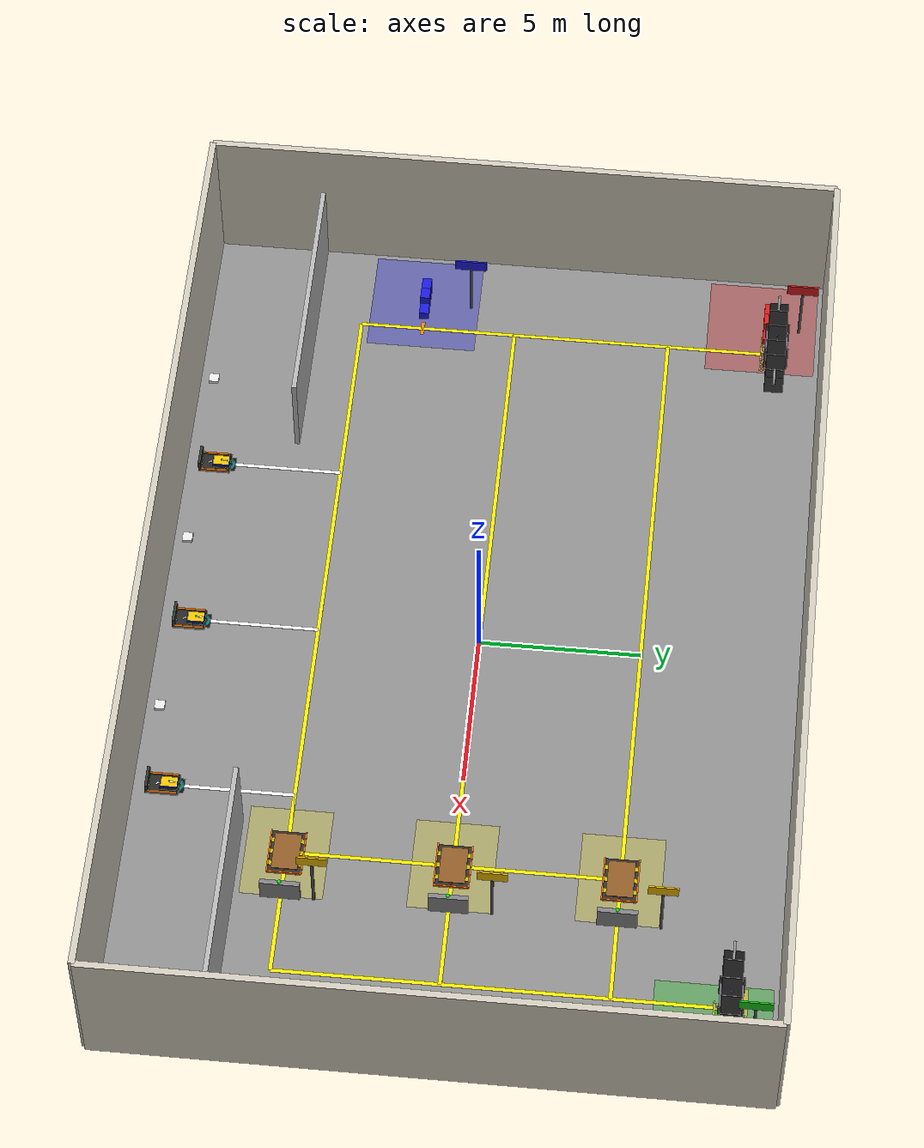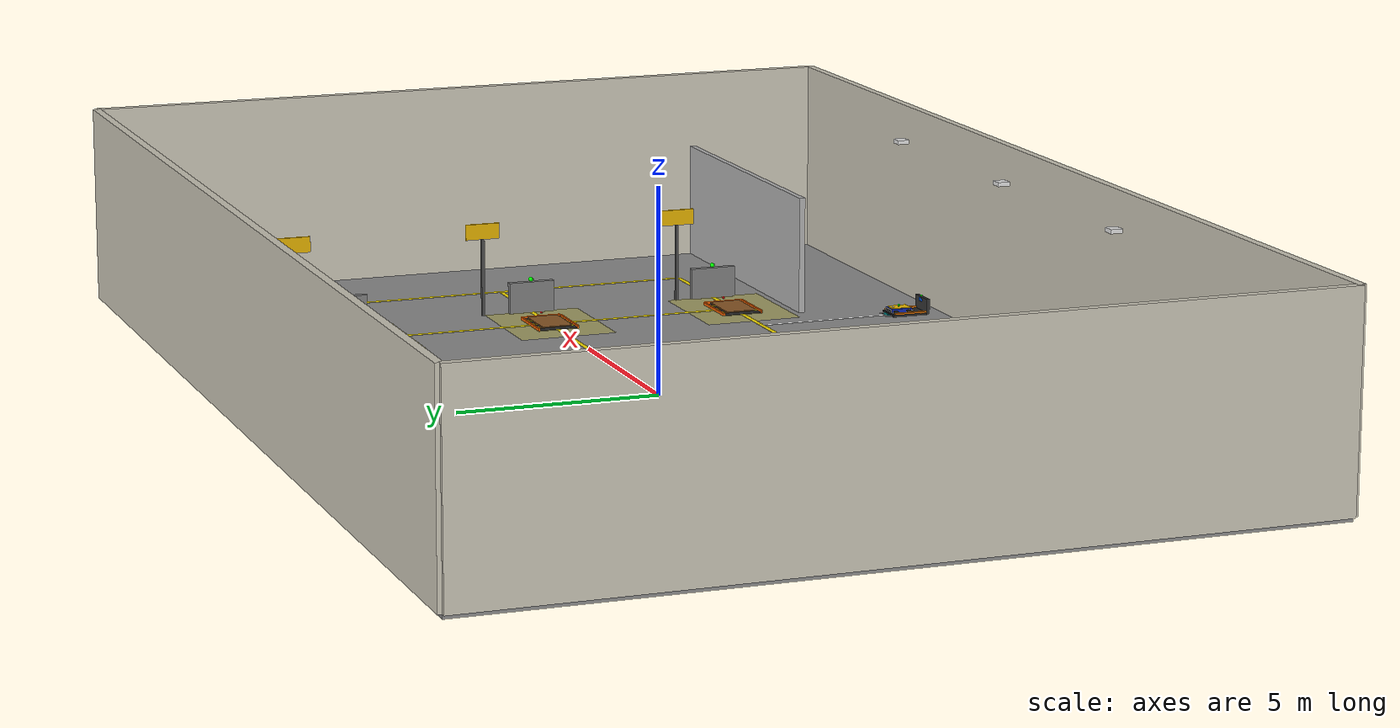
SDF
<sdf version="1.7">
 <world name="agv_factory">
  <model name="factory_floor">
   <static>true</static>
   <pose>0 0 -0.05 0 0 0</pose>
   <link name="link">
    <collision name="col"><geometry><box><size>30 20 0.1</size></box></geometry></collision>
    <visual name="vis">
     <geometry><box><size>30 20 0.1</size></box></geometry>
     <material><ambient>0.55 0.55 0.55 1</ambient><diffuse>0.55 0.55 0.55 1</diffuse></material>
    </visual>
   </link>
  </model>
  <model name="wall_north">
   <static>true</static>
   <pose>0 10 2.5 0 0 0</pose>
   <link name="link">
    <collision name="col"><geometry><box><size>30 0.2 5</size></box></geometry></collision>
    <visual name="vis">
     <geometry><box><size>30 0.2 5</size></box></geometry>
     <material><ambient>0.8 0.78 0.72 1</ambient></material>
    </visual>
   </link>
  </model>
  <model name="wall_south">
   <static>true</static>
   <pose>0 -10 2.5 0 0 0</pose>
   <link name="link">
    <collision name="col"><geometry><box><size>30 0.2 5</size></box></geometry></collision>
    <visual name="vis">
     <geometry><box><size>30 0.2 5</size></box></geometry>
     <material><ambient>0.8 0.78 0.72 1</ambient></material>
    </visual>
   </link>
  </model>
  <model name="wall_east">
   <static>true</static>
   <pose>15 0 2.5 0 0 0</pose>
   <link name="link">
    <collision name="col"><geometry><box><size>0.2 20 5</size></box></geometry></collision>
    <visual name="vis">
     <geometry><box><size>0.2 20 5</size></box></geometry>
     <material><ambient>0.8 0.78 0.72 1</ambient></material>
    </visual>
   </link>
  </model>
  <model name="wall_west">
   <static>true</static>
   <pose>-15 0 2.5 0 0 0</pose>
   <link name="link">
    <collision name="col"><geometry><box><size>0.2 20 5</size></box></geometry></collision>
    <visual name="vis">
     <geometry><box><size>0.2 20 5</size></box></geometry>
     <material><ambient>0.8 0.78 0.72 1</ambient></material>
    </visual>
   </link>
  </model>
  <model name="wall_div_w">
   <static>true</static>
   <pose>-11 -6.5 1.5 0 0 0</pose>
   <link name="link">
    <collision name="col"><geometry><box><size>8 0.15 3</size></box></geometry></collision>
    <visual name="vis">
     <geometry><box><size>8 0.15 3</size></box></geometry>
     <material><ambient>0.7 0.7 0.7 1</ambient></material>
    </visual>
   </link>
  </model>
  <model name="wall_div_e">
   <static>true</static>
   <pose>11 -6.5 1.5 0 0 0</pose>
   <link name="link">
    <collision name="col"><geometry><box><size>8 0.15 3</size></box></geometry></collision>
    <visual name="vis">
     <geometry><box><size>8 0.15 3</size></box></geometry>
     <material><ambient>0.7 0.7 0.7 1</ambient></material>
    </visual>
   </link>
  </model>
  <model name="dock_line_1">
   <static>true</static>
   <pose>-6 -6.9 0.003 0 0 0</pose>
   <link name="l">
    <visual name="v">
     <geometry><box><size>0.12 3.8 0.004</size></box></geometry>
     <material><ambient>1 1 1 1</ambient><diffuse>1 1 1 1</diffuse><emissive>0.8 0.8 0.8 1</emissive></material>
    </visual>
   </link>
  </model>
  <model name="dock_line_2">
   <static>true</static>
   <pose>0 -6.9 0.003 0 0 0</pose>
   <link name="l">
    <visual name="v">
     <geometry><box><size>0.12 3.8 0.004</size></box></geometry>
     <material><ambient>1 1 1 1</ambient><diffuse>1 1 1 1</diffuse><emissive>0.8 0.8 0.8 1</emissive></material>
    </visual>
   </link>
  </model>
  <model name="dock_line_3">
   <static>true</static>
   <pose>6 -6.9 0.003 0 0 0</pose>
   <link name="l">
    <visual name="v">
     <geometry><box><size>0.12 3.8 0.004</size></box></geometry>
     <material><ambient>1 1 1 1</ambient><diffuse>1 1 1 1</diffuse><emissive>0.8 0.8 0.8 1</emissive></material>
    </visual>
   </link>
  </model>
  <model name="line_south">
   <static>true</static>
   <pose>0 -5 0.003 0 0 0</pose>
   <link name="l">
    <visual name="v">
     <geometry><box><size>24 0.12 0.004</size></box></geometry>
     <material>
      <ambient>1.0 0.9 0.0 1</ambient>
      <diffuse>1.0 0.9 0.0 1</diffuse>
      <emissive>0.6 0.55 0.0 1</emissive>
     </material>
    </visual>
   </link>
  </model>
  <model name="line_spine_w">
   <static>true</static>
   <pose>-12 0 0.003 0 0 0</pose>
   <link name="l">
    <visual name="v">
     <geometry><box><size>0.12 10 0.004</size></box></geometry>
     <material>
      <ambient>1.0 0.9 0.0 1</ambient>
      <diffuse>1.0 0.9 0.0 1</diffuse>
      <emissive>0.6 0.55 0.0 1</emissive>
     </material>
    </visual>
   </link>
  </model>
  <model name="line_depot_c_mark">
   <static>true</static>
   <pose>-12 -3 0.003 0 0 0</pose>
   <link name="l">
    <visual name="v">
     <geometry><box><size>0.5 0.12 0.004</size></box></geometry>
     <material>
      <ambient>1.0 0.5 0.0 1</ambient>
      <diffuse>1.0 0.5 0.0 1</diffuse>
      <emissive>0.6 0.3 0.0 1</emissive>
     </material>
    </visual>
   </link>
  </model>
  <model name="line_spine_e">
   <static>true</static>
   <pose>12 0 0.003 0 0 0</pose>
   <link name="l">
    <visual name="v">
     <geometry><box><size>0.12 10 0.004</size></box></geometry>
     <material>
      <ambient>1.0 0.9 0.0 1</ambient>
      <diffuse>1.0 0.9 0.0 1</diffuse>
      <emissive>0.6 0.55 0.0 1</emissive>
     </material>
    </visual>
   </link>
  </model>
  <model name="line_north">
   <static>true</static>
   <pose>0 5 0.003 0 0 0</pose>
   <link name="l">
    <visual name="v">
     <geometry><box><size>24 0.12 0.004</size></box></geometry>
     <material>
      <ambient>1.0 0.9 0.0 1</ambient>
      <diffuse>1.0 0.9 0.0 1</diffuse>
      <emissive>0.6 0.55 0.0 1</emissive>
     </material>
    </visual>
   </link>
  </model>
  <model name="line_spur_a">
   <static>true</static>
   <pose>-12 6.5 0.003 0 0 0</pose>
   <link name="l">
    <visual name="v">
     <geometry><box><size>0.12 3 0.004</size></box></geometry>
     <material>
      <ambient>1.0 0.9 0.0 1</ambient>
      <diffuse>1.0 0.9 0.0 1</diffuse>
      <emissive>0.6 0.55 0.0 1</emissive>
     </material>
    </visual>
   </link>
  </model>
  <model name="line_spur_b">
   <static>true</static>
   <pose>12 6.5 0.003 0 0 0</pose>
   <link name="l">
    <visual name="v">
     <geometry><box><size>0.12 3 0.004</size></box></geometry>
     <material>
      <ambient>1.0 0.9 0.0 1</ambient>
      <diffuse>1.0 0.9 0.0 1</diffuse>
      <emissive>0.6 0.55 0.0 1</emissive>
     </material>
    </visual>
   </link>
  </model>
  <model name="line_mid">
   <static>true</static>
   <pose>-2 0 0.003 0 0 0</pose>
   <link name="l">
    <visual name="v">
     <geometry><box><size>20 0.12 0.004</size></box></geometry>
     <material>
      <ambient>1.0 0.9 0.0 1</ambient>
      <diffuse>1.0 0.9 0.0 1</diffuse>
      <emissive>0.6 0.55 0.0 1</emissive>
     </material>
    </visual>
   </link>
  </model>
  <model name="line_east_mid">
   <static>true</static>
   <pose>10 0 0.003 0 0 0</pose>
   <link name="l">
    <visual name="v">
     <geometry><box><size>4 0.12 0.004</size></box></geometry>
     <material>
      <ambient>1.0 0.9 0.0 1</ambient>
      <diffuse>1.0 0.9 0.0 1</diffuse>
      <emissive>0.6 0.55 0.0 1</emissive>
     </material>
    </visual>
   </link>
  </model>
  <model name="line_shop_spine">
   <static>true</static>
   <pose>8 0 0.003 0 0 0</pose>
   <link name="l">
    <visual name="v">
     <geometry><box><size>0.12 10 0.004</size></box></geometry>
     <material>
      <ambient>1.0 0.9 0.0 1</ambient>
      <diffuse>1.0 0.9 0.0 1</diffuse>
      <emissive>0.6 0.55 0.0 1</emissive>
     </material>
    </visual>
   </link>
  </model>
  <model name="line_shop_conn_n">
   <static>true</static>
   <pose>7 5 0.003 0 0 0</pose>
   <link name="l">
    <visual name="v">
     <geometry><box><size>2 0.12 0.004</size></box></geometry>
     <material>
      <ambient>1.0 0.9 0.0 1</ambient>
      <diffuse>1.0 0.9 0.0 1</diffuse>
      <emissive>0.6 0.55 0.0 1</emissive>
     </material>
    </visual>
   </link>
  </model>
  <model name="line_shop_conn_s">
   <static>true</static>
   <pose>7 -5 0.003 0 0 0</pose>
   <link name="l">
    <visual name="v">
     <geometry><box><size>2 0.12 0.004</size></box></geometry>
     <material>
      <ambient>1.0 0.9 0.0 1</ambient>
      <diffuse>1.0 0.9 0.0 1</diffuse>
      <emissive>0.6 0.55 0.0 1</emissive>
     </material>
    </visual>
   </link>
  </model>
  <include><uri>model://load_station</uri><name>load_A</name><pose>-12 8.5 0 0 0 3.1416</pose></include>
  <include><uri>model://load_station</uri><name>load_B</name><pose>12 8.5 0 0 0 3.1416</pose></include>
  <include><uri>model://conveyor_belt</uri><name>conveyor_A</name><pose>-12 8.5 0 0 0 0</pose></include>
  <include><uri>model://conveyor_belt</uri><name>conveyor_B</name><pose>12 8.5 0 0 0 0</pose></include>
  <include><uri>model://drop_station</uri><name>drop_1</name><pose>8  5 0 0 0 0</pose></include>
  <include><uri>model://drop_station</uri><name>drop_2</name><pose>8  0 0 0 0 0</pose></include>
  <include><uri>model://drop_station</uri><name>drop_3</name><pose>8 -5 0 0 0 0</pose></include>
  <include><uri>model://docking_station</uri><name>dock_1</name><pose>-6 -9 0 0 0 1.5708</pose></include>
  <include><uri>model://docking_station</uri><name>dock_2</name><pose>0 -9 0 0 0 1.5708</pose></include>
  <include><uri>model://docking_station</uri><name>dock_3</name><pose>6 -9 0 0 0 1.5708</pose></include>
  <include><uri>model://charging_pad</uri><name>charge_1</name><pose>-6 -8.6 0 0 0 0</pose></include>
  <include><uri>model://charging_pad</uri><name>charge_2</name><pose>0 -8.6 0 0 0 0</pose></include>
  <include><uri>model://charging_pad</uri><name>charge_3</name><pose>6 -8.6 0 0 0 0</pose></include>
  <include><uri>model://agv_robot</uri><name>agv_1</name><pose>-6 -8.8 0 0 0 1.5708</pose></include>
  <include><uri>model://agv_robot</uri><name>agv_2</name><pose>0 -8.8 0 0 0 1.5708</pose></include>
  <include><uri>model://agv_robot</uri><name>agv_3</name><pose>6 -8.8 0 0 0 1.5708</pose></include>
  <include><uri>model://carton_box</uri><name>carton_A1</name><pose>-12.4 8.5 0.44 0 0 0</pose></include>
  <include><uri>model://carton_box</uri><name>carton_A2</name><pose>-12.0 8.5 0.44 0 0 0</pose></include>
  <include><uri>model://carton_box</uri><name>carton_A3</name><pose>-11.6 8.5 0.44 0 0 0</pose></include>
  <include><uri>model://carton_box</uri><name>carton_B1</name><pose>12.4 8.5 0.44 0 0 0</pose></include>
  <include><uri>model://carton_box</uri><name>carton_B2</name><pose>12.0 8.5 0.44 0 0 0</pose></include>
  <include><uri>model://carton_box</uri><name>carton_B3</name><pose>11.6 8.5 0.44 0 0 0</pose></include>
  <include><uri>model://pallet</uri><name>pallet_1</name><pose>8  5 0.001 0 0 0</pose></include>
  <include><uri>model://pallet</uri><name>pallet_2</name><pose>8  0 0.001 0 0 0</pose></include>
  <include><uri>model://pallet</uri><name>pallet_3</name><pose>8 -5 0.001 0 0 0</pose></include>
  <model name="zone_depot_a">
   <static>true</static>
   <pose>-13 8 0.001 0 0 0</pose>
   <link name="l">
    <visual name="v">
     <geometry><box><size>3.5 3.5 0.002</size></box></geometry>
     <material><ambient>0.8 0.1 0.1 0.35</ambient><diffuse>0.8 0.1 0.1 0.35</diffuse></material>
    </visual>
   </link>
  </model>
  <model name="sign_depot_a">
   <static>true</static>
   <pose>-13 9.2 0 0 0 0</pose>
   <link name="l">
    <collision name="c">
     <pose>0 0 1.0 0 0 0</pose>
     <geometry><box><size>0.08 0.08 2.0</size></box></geometry>
    </collision>
    <visual name="pole">
     <pose>0 0 1.0 0 0 0</pose>
     <geometry><box><size>0.08 0.08 2.0</size></box></geometry>
     <material><ambient>0.3 0.3 0.3 1</ambient></material>
    </visual>
    <visual name="board">
     <pose>0 0 2.2 0 0 0</pose>
     <geometry><box><size>0.05 1.0 0.4</size></box></geometry>
     <material><ambient>0.8 0.1 0.1 1</ambient><diffuse>0.8 0.1 0.1 1</diffuse></material>
    </visual>
   </link>
  </model>
  <model name="mat_a_1">
   <static>true</static>
   <pose>-13.4 8.2 0.15 0 0 0</pose>
   <link name="l">
    <collision name="c"><geometry><box><size>0.4 0.3 0.3</size></box></geometry></collision>
    <visual name="v">
     <geometry><box><size>0.4 0.3 0.3</size></box></geometry>
     <material><ambient>0.85 0.1 0.1 1</ambient><diffuse>0.85 0.1 0.1 1</diffuse></material>
    </visual>
   </link>
  </model>
  <model name="mat_a_2">
   <static>true</static>
   <pose>-13.0 8.2 0.15 0 0 0</pose>
   <link name="l">
    <collision name="c"><geometry><box><size>0.4 0.3 0.3</size></box></geometry></collision>
    <visual name="v">
     <geometry><box><size>0.4 0.3 0.3</size></box></geometry>
     <material><ambient>0.85 0.1 0.1 1</ambient></material>
    </visual>
   </link>
  </model>
  <model name="mat_a_3">
   <static>true</static>
   <pose>-12.6 8.2 0.15 0 0 0</pose>
   <link name="l">
    <collision name="c"><geometry><box><size>0.4 0.3 0.3</size></box></geometry></collision>
    <visual name="v">
     <geometry><box><size>0.4 0.3 0.3</size></box></geometry>
     <material><ambient>0.85 0.1 0.1 1</ambient></material>
    </visual>
   </link>
  </model>
  <model name="mat_a_4">
   <static>true</static>
   <pose>-13.4 8.2 0.45 0 0 0</pose>
   <link name="l">
    <collision name="c"><geometry><box><size>0.4 0.3 0.3</size></box></geometry></collision>
    <visual name="v">
     <geometry><box><size>0.4 0.3 0.3</size></box></geometry>
     <material><ambient>0.85 0.1 0.1 1</ambient></material>
    </visual>
   </link>
  </model>
  <model name="mat_a_5">
   <static>true</static>
   <pose>-13.0 8.2 0.45 0 0 0</pose>
   <link name="l">
    <collision name="c"><geometry><box><size>0.4 0.3 0.3</size></box></geometry></collision>
    <visual name="v">
     <geometry><box><size>0.4 0.3 0.3</size></box></geometry>
     <material><ambient>0.85 0.1 0.1 1</ambient></material>
    </visual>
   </link>
  </model>
  <model name="zone_depot_b">
   <static>true</static>
   <pose>13 8 0.001 0 0 0</pose>
   <link name="l">
    <visual name="v">
     <geometry><box><size>3.5 3.5 0.002</size></box></geometry>
     <material><ambient>0.1 0.75 0.1 0.35</ambient><diffuse>0.1 0.75 0.1 0.35</diffuse></material>
    </visual>
   </link>
  </model>
  <model name="sign_depot_b">
   <static>true</static>
   <pose>13 9.2 0 0 0 0</pose>
   <link name="l">
    <collision name="c">
     <pose>0 0 1.0 0 0 0</pose>
     <geometry><box><size>0.08 0.08 2.0</size></box></geometry>
    </collision>
    <visual name="pole">
     <pose>0 0 1.0 0 0 0</pose>
     <geometry><box><size>0.08 0.08 2.0</size></box></geometry>
     <material><ambient>0.3 0.3 0.3 1</ambient></material>
    </visual>
    <visual name="board">
     <pose>0 0 2.2 0 0 0</pose>
     <geometry><box><size>0.05 1.0 0.4</size></box></geometry>
     <material><ambient>0.1 0.75 0.1 1</ambient><diffuse>0.1 0.75 0.1 1</diffuse></material>
    </visual>
   </link>
  </model>
  <model name="mat_b_1">
   <static>true</static>
   <pose>12.6 8.2 0.15 0 0 0</pose>
   <link name="l">
    <collision name="c"><geometry><box><size>0.4 0.3 0.3</size></box></geometry></collision>
    <visual name="v">
     <geometry><box><size>0.4 0.3 0.3</size></box></geometry>
     <material><ambient>0.1 0.75 0.1 1</ambient><diffuse>0.1 0.75 0.1 1</diffuse></material>
    </visual>
   </link>
  </model>
  <model name="mat_b_2">
   <static>true</static>
   <pose>13.0 8.2 0.15 0 0 0</pose>
   <link name="l">
    <collision name="c"><geometry><box><size>0.4 0.3 0.3</size></box></geometry></collision>
    <visual name="v">
     <geometry><box><size>0.4 0.3 0.3</size></box></geometry>
     <material><ambient>0.1 0.75 0.1 1</ambient></material>
    </visual>
   </link>
  </model>
  <model name="mat_b_3">
   <static>true</static>
   <pose>13.4 8.2 0.15 0 0 0</pose>
   <link name="l">
    <collision name="c"><geometry><box><size>0.4 0.3 0.3</size></box></geometry></collision>
    <visual name="v">
     <geometry><box><size>0.4 0.3 0.3</size></box></geometry>
     <material><ambient>0.1 0.75 0.1 1</ambient></material>
    </visual>
   </link>
  </model>
  <model name="mat_b_4">
   <static>true</static>
   <pose>12.6 8.2 0.45 0 0 0</pose>
   <link name="l">
    <collision name="c"><geometry><box><size>0.4 0.3 0.3</size></box></geometry></collision>
    <visual name="v">
     <geometry><box><size>0.4 0.3 0.3</size></box></geometry>
     <material><ambient>0.1 0.75 0.1 1</ambient></material>
    </visual>
   </link>
  </model>
  <model name="mat_b_5">
   <static>true</static>
   <pose>13.0 8.2 0.45 0 0 0</pose>
   <link name="l">
    <collision name="c"><geometry><box><size>0.4 0.3 0.3</size></box></geometry></collision>
    <visual name="v">
     <geometry><box><size>0.4 0.3 0.3</size></box></geometry>
     <material><ambient>0.1 0.75 0.1 1</ambient></material>
    </visual>
   </link>
  </model>
  <model name="zone_depot_c">
   <static>true</static>
   <pose>-13 -3 0.001 0 0 0</pose>
   <link name="l">
    <visual name="v">
     <geometry><box><size>3.5 3.5 0.002</size></box></geometry>
     <material><ambient>0.1 0.1 0.85 0.35</ambient><diffuse>0.1 0.1 0.85 0.35</diffuse></material>
    </visual>
   </link>
  </model>
  <model name="sign_depot_c">
   <static>true</static>
   <pose>-13 -1.5 0 0 0 0</pose>
   <link name="l">
    <collision name="c">
     <pose>0 0 1.0 0 0 0</pose>
     <geometry><box><size>0.08 0.08 2.0</size></box></geometry>
    </collision>
    <visual name="pole">
     <pose>0 0 1.0 0 0 0</pose>
     <geometry><box><size>0.08 0.08 2.0</size></box></geometry>
     <material><ambient>0.3 0.3 0.3 1</ambient></material>
    </visual>
    <visual name="board">
     <pose>0 0 2.2 0 0 0</pose>
     <geometry><box><size>0.05 1.0 0.4</size></box></geometry>
     <material><ambient>0.1 0.1 0.85 1</ambient><diffuse>0.1 0.1 0.85 1</diffuse></material>
    </visual>
   </link>
  </model>
  <model name="mat_c_1">
   <static>true</static>
   <pose>-13.4 -3 0.15 0 0 0</pose>
   <link name="l">
    <collision name="c"><geometry><box><size>0.4 0.3 0.3</size></box></geometry></collision>
    <visual name="v">
     <geometry><box><size>0.4 0.3 0.3</size></box></geometry>
     <material><ambient>0.1 0.1 0.85 1</ambient><diffuse>0.1 0.1 0.85 1</diffuse></material>
    </visual>
   </link>
  </model>
  <model name="mat_c_2">
   <static>true</static>
   <pose>-13.0 -3 0.15 0 0 0</pose>
   <link name="l">
    <collision name="c"><geometry><box><size>0.4 0.3 0.3</size></box></geometry></collision>
    <visual name="v">
     <geometry><box><size>0.4 0.3 0.3</size></box></geometry>
     <material><ambient>0.1 0.1 0.85 1</ambient></material>
    </visual>
   </link>
  </model>
  <model name="mat_c_3">
   <static>true</static>
   <pose>-12.6 -3 0.15 0 0 0</pose>
   <link name="l">
    <collision name="c"><geometry><box><size>0.4 0.3 0.3</size></box></geometry></collision>
    <visual name="v">
     <geometry><box><size>0.4 0.3 0.3</size></box></geometry>
     <material><ambient>0.1 0.1 0.85 1</ambient></material>
    </visual>
   </link>
  </model>
  <model name="mat_c_4">
   <static>true</static>
   <pose>-13.4 -3 0.45 0 0 0</pose>
   <link name="l">
    <collision name="c"><geometry><box><size>0.4 0.3 0.3</size></box></geometry></collision>
    <visual name="v">
     <geometry><box><size>0.4 0.3 0.3</size></box></geometry>
     <material><ambient>0.1 0.1 0.85 1</ambient></material>
    </visual>
   </link>
  </model>
  <model name="mat_c_5">
   <static>true</static>
   <pose>-13.0 -3 0.45 0 0 0</pose>
   <link name="l">
    <collision name="c"><geometry><box><size>0.4 0.3 0.3</size></box></geometry></collision>
    <visual name="v">
     <geometry><box><size>0.4 0.3 0.3</size></box></geometry>
     <material><ambient>0.1 0.1 0.85 1</ambient></material>
    </visual>
   </link>
  </model>
  <model name="zone_shop_1">
   <static>true</static>
   <pose>8 5 0.001 0 0 0</pose>
   <link name="l">
    <visual name="v">
     <geometry><box><size>3.0 2.5 0.002</size></box></geometry>
     <material><ambient>0.9 0.85 0.1 0.3</ambient><diffuse>0.9 0.85 0.1 0.3</diffuse></material>
    </visual>
   </link>
  </model>
  <model name="shop_shelf_1">
   <static>true</static>
   <pose>9.5 5 0 0 0 0</pose>
   <link name="l">
    <collision name="c">
     <pose>0 0 0.4 0 0 0</pose>
     <geometry><box><size>0.15 1.2 0.8</size></box></geometry>
    </collision>
    <visual name="frame">
     <pose>0 0 0.4 0 0 0</pose>
     <geometry><box><size>0.15 1.2 0.8</size></box></geometry>
     <material><ambient>0.5 0.5 0.5 1</ambient></material>
    </visual>
    <visual name="stock_led">
     <pose>0 0 0.85 0 0 0</pose>
     <geometry><sphere><radius>0.06</radius></sphere></geometry>
     <material><ambient>0 1 0 1</ambient><diffuse>0 1 0 1</diffuse><emissive>0 0.7 0 1</emissive></material>
    </visual>
   </link>
  </model>
  <model name="sign_shop_1">
   <static>true</static>
   <pose>9.5 6.3 0 0 0 0</pose>
   <link name="l">
    <collision name="c">
     <pose>0 0 1.0 0 0 0</pose>
     <geometry><box><size>0.08 0.08 2.0</size></box></geometry>
    </collision>
    <visual name="pole">
     <pose>0 0 1.0 0 0 0</pose>
     <geometry><box><size>0.08 0.08 2.0</size></box></geometry>
     <material><ambient>0.3 0.3 0.3 1</ambient></material>
    </visual>
    <visual name="board">
     <pose>0 0 2.2 0 0 0</pose>
     <geometry><box><size>0.05 0.9 0.4</size></box></geometry>
     <material><ambient>0.9 0.7 0.0 1</ambient><diffuse>0.9 0.7 0.0 1</diffuse></material>
    </visual>
   </link>
  </model>
  <model name="zone_shop_2">
   <static>true</static>
   <pose>8 0 0.001 0 0 0</pose>
   <link name="l">
    <visual name="v">
     <geometry><box><size>3.0 2.5 0.002</size></box></geometry>
     <material><ambient>0.9 0.85 0.1 0.3</ambient></material>
    </visual>
   </link>
  </model>
  <model name="shop_shelf_2">
   <static>true</static>
   <pose>9.5 0 0 0 0 0</pose>
   <link name="l">
    <collision name="c">
     <pose>0 0 0.4 0 0 0</pose>
     <geometry><box><size>0.15 1.2 0.8</size></box></geometry>
    </collision>
    <visual name="frame">
     <pose>0 0 0.4 0 0 0</pose>
     <geometry><box><size>0.15 1.2 0.8</size></box></geometry>
     <material><ambient>0.5 0.5 0.5 1</ambient></material>
    </visual>
    <visual name="stock_led">
     <pose>0 0 0.85 0 0 0</pose>
     <geometry><sphere><radius>0.06</radius></sphere></geometry>
     <material><ambient>0 1 0 1</ambient><diffuse>0 1 0 1</diffuse><emissive>0 0.7 0 1</emissive></material>
    </visual>
   </link>
  </model>
  <model name="sign_shop_2">
   <static>true</static>
   <pose>9.5 1.3 0 0 0 0</pose>
   <link name="l">
    <collision name="c">
     <pose>0 0 1.0 0 0 0</pose>
     <geometry><box><size>0.08 0.08 2.0</size></box></geometry>
    </collision>
    <visual name="pole">
     <pose>0 0 1.0 0 0 0</pose>
     <geometry><box><size>0.08 0.08 2.0</size></box></geometry>
     <material><ambient>0.3 0.3 0.3 1</ambient></material>
    </visual>
    <visual name="board">
     <pose>0 0 2.2 0 0 0</pose>
     <geometry><box><size>0.05 0.9 0.4</size></box></geometry>
     <material><ambient>0.9 0.7 0.0 1</ambient></material>
    </visual>
   </link>
  </model>
  <model name="zone_shop_3">
   <static>true</static>
   <pose>8 -5 0.001 0 0 0</pose>
   <link name="l">
    <visual name="v">
     <geometry><box><size>3.0 2.5 0.002</size></box></geometry>
     <material><ambient>0.9 0.85 0.1 0.3</ambient></material>
    </visual>
   </link>
  </model>
  <model name="shop_shelf_3">
   <static>true</static>
   <pose>9.5 -5 0 0 0 0</pose>
   <link name="l">
    <collision name="c">
     <pose>0 0 0.4 0 0 0</pose>
     <geometry><box><size>0.15 1.2 0.8</size></box></geometry>
    </collision>
    <visual name="frame">
     <pose>0 0 0.4 0 0 0</pose>
     <geometry><box><size>0.15 1.2 0.8</size></box></geometry>
     <material><ambient>0.5 0.5 0.5 1</ambient></material>
    </visual>
    <visual name="stock_led">
     <pose>0 0 0.85 0 0 0</pose>
     <geometry><sphere><radius>0.06</radius></sphere></geometry>
     <material><ambient>0 1 0 1</ambient><diffuse>0 1 0 1</diffuse><emissive>0 0.7 0 1</emissive></material>
    </visual>
   </link>
  </model>
  <model name="sign_shop_3">
   <static>true</static>
   <pose>9.5 -4.0 0 0 0 0</pose>
   <link name="l">
    <collision name="c">
     <pose>0 0 1.0 0 0 0</pose>
     <geometry><box><size>0.08 0.08 2.0</size></box></geometry>
    </collision>
    <visual name="pole">
     <pose>0 0 1.0 0 0 0</pose>
     <geometry><box><size>0.08 0.08 2.0</size></box></geometry>
     <material><ambient>0.3 0.3 0.3 1</ambient></material>
    </visual>
    <visual name="board">
     <pose>0 0 2.2 0 0 0</pose>
     <geometry><box><size>0.05 0.9 0.4</size></box></geometry>
     <material><ambient>0.9 0.7 0.0 1</ambient></material>
    </visual>
   </link>
  </model>
  <model name="dock_fixture_1">
   <static>true</static>
   <pose>-6 -8.8 4.5 0 0 0</pose>
   <link name="l">
    <visual name="v">
     <geometry><box><size>0.3 0.3 0.1</size></box></geometry>
     <material>
      <ambient>0.9 0.9 0.9 1</ambient>
      <diffuse>0.9 0.9 0.9 1</diffuse>
      <emissive>1.0 1.0 0.85 1</emissive>
     </material>
    </visual>
   </link>
  </model>
  <model name="dock_fixture_2">
   <static>true</static>
   <pose>0 -8.8 4.5 0 0 0</pose>
   <link name="l">
    <visual name="v">
     <geometry><box><size>0.3 0.3 0.1</size></box></geometry>
     <material>
      <ambient>0.9 0.9 0.9 1</ambient>
      <diffuse>0.9 0.9 0.9 1</diffuse>
      <emissive>1.0 1.0 0.85 1</emissive>
     </material>
    </visual>
   </link>
  </model>
  <model name="dock_fixture_3">
   <static>true</static>
   <pose>6 -8.8 4.5 0 0 0</pose>
   <link name="l">
    <visual name="v">
     <geometry><box><size>0.3 0.3 0.1</size></box></geometry>
     <material>
      <ambient>0.9 0.9 0.9 1</ambient>
      <diffuse>0.9 0.9 0.9 1</diffuse>
      <emissive>1.0 1.0 0.85 1</emissive>
     </material>
    </visual>
   </link>
  </model>
 </world>
</sdf>
